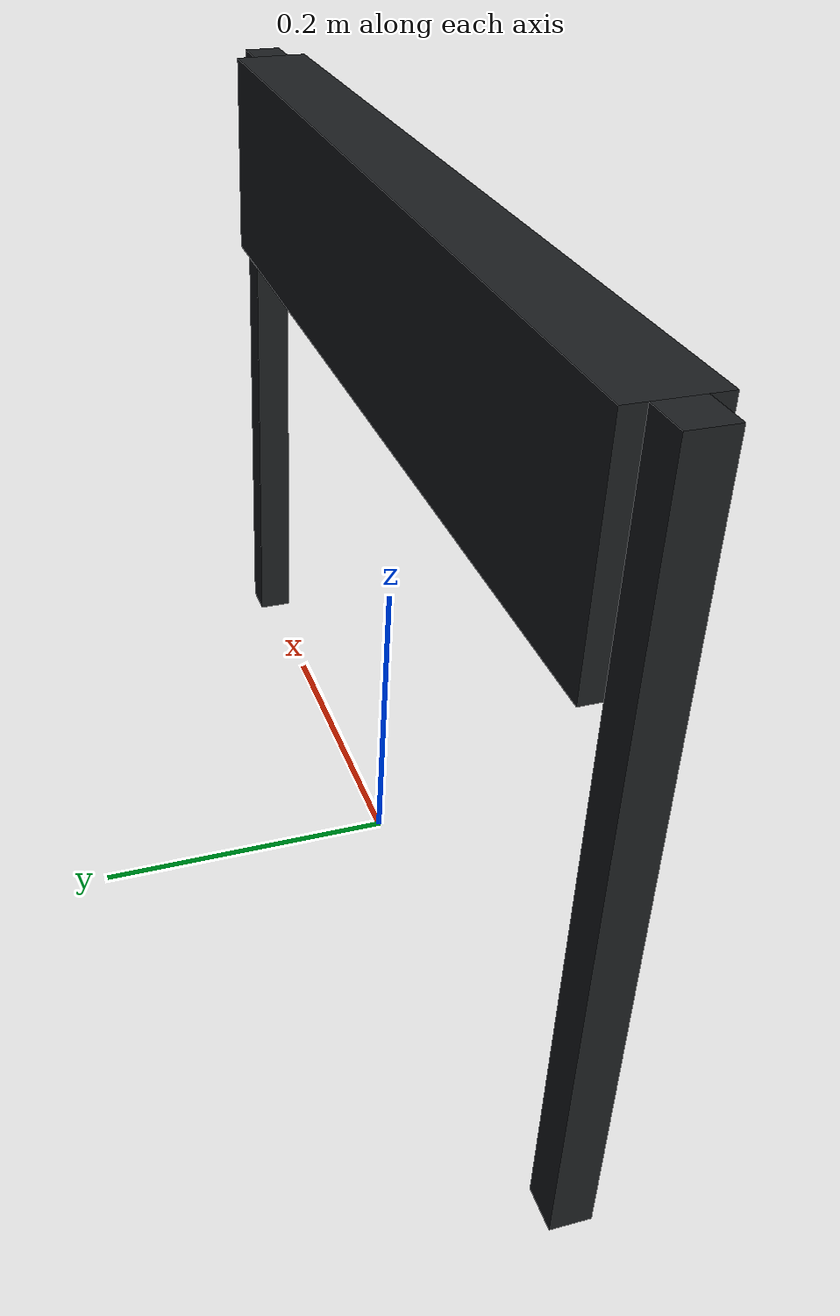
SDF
<?xml version="1.0"?>
<sdf version="1.5">
  <model name="traffic_light">
    <static>false</static>
    <link name="body">
      <gravity>false</gravity>
      <kinematic>true</kinematic>
      <visual name="housing">
        <pose>0 0 0.41 0 0 0</pose>
        <geometry><box><size>0.59 0.05 0.14</size></box></geometry>
        <material>
          <ambient>0.07 0.08 0.09 1</ambient>
          <diffuse>0.11 0.12 0.13 1</diffuse>
        </material>
      </visual>
      <collision name="housing_collision">
        <pose>0 0 0.41 0 0 0</pose>
        <geometry><box><size>0.59 0.05 0.14</size></box></geometry>
      </collision>

      <visual name="left_leg">
        <pose>-0.3075 0 0.24 0 0 0</pose>
        <geometry><box><size>0.025 0.025 0.48</size></box></geometry>
        <material>
          <ambient>0.07 0.08 0.09 1</ambient>
          <diffuse>0.11 0.12 0.13 1</diffuse>
        </material>
      </visual>
      <collision name="left_leg_collision">
        <pose>-0.3075 0 0.24 0 0 0</pose>
        <geometry><box><size>0.025 0.025 0.48</size></box></geometry>
      </collision>
      <visual name="right_leg">
        <pose>0.3075 0 0.24 0 0 0</pose>
        <geometry><box><size>0.025 0.025 0.48</size></box></geometry>
        <material>
          <ambient>0.07 0.08 0.09 1</ambient>
          <diffuse>0.11 0.12 0.13 1</diffuse>
        </material>
      </visual>
      <collision name="right_leg_collision">
        <pose>0.3075 0 0.24 0 0 0</pose>
        <geometry><box><size>0.025 0.025 0.48</size></box></geometry>
      </collision>

      <visual name="red_lamp">
        <pose>-0.20 -0.026 0.41 1.57079632679 0 0</pose>
        <geometry><plane><normal>0 0 1</normal><size>0.13 0.13</size></plane></geometry>
        <material><script>
          <uri>model://traffic_light/materials/scripts</uri>
          <uri>model://traffic_light/materials/textures</uri>
          <name>TrafficLight/RedOn</name>
        </script></material>
        <cast_shadows>false</cast_shadows>
      </visual>
      <visual name="yellow_lamp">
        <pose>0 -0.026 0.41 1.57079632679 0 0</pose>
        <geometry><plane><normal>0 0 1</normal><size>0.13 0.13</size></plane></geometry>
        <material><script>
          <uri>model://traffic_light/materials/scripts</uri>
          <uri>model://traffic_light/materials/textures</uri>
          <name>TrafficLight/YellowDark</name>
        </script></material>
        <cast_shadows>false</cast_shadows>
      </visual>
      <visual name="green_lamp">
        <pose>0.20 -0.026 0.41 1.57079632679 0 0</pose>
        <geometry><plane><normal>0 0 1</normal><size>0.13 0.13</size></plane></geometry>
        <material><script>
          <uri>model://traffic_light/materials/scripts</uri>
          <uri>model://traffic_light/materials/textures</uri>
          <name>TrafficLight/GreenDark</name>
        </script></material>
        <cast_shadows>false</cast_shadows>
      </visual>
    </link>

    <plugin name="traffic_light_controller" filename="libtraffic_light_controller.so">
      <red_duration>10</red_duration>
      <green_duration>15</green_duration>
      <yellow_duration>5</yellow_duration>
    </plugin>
  </model>
</sdf>
